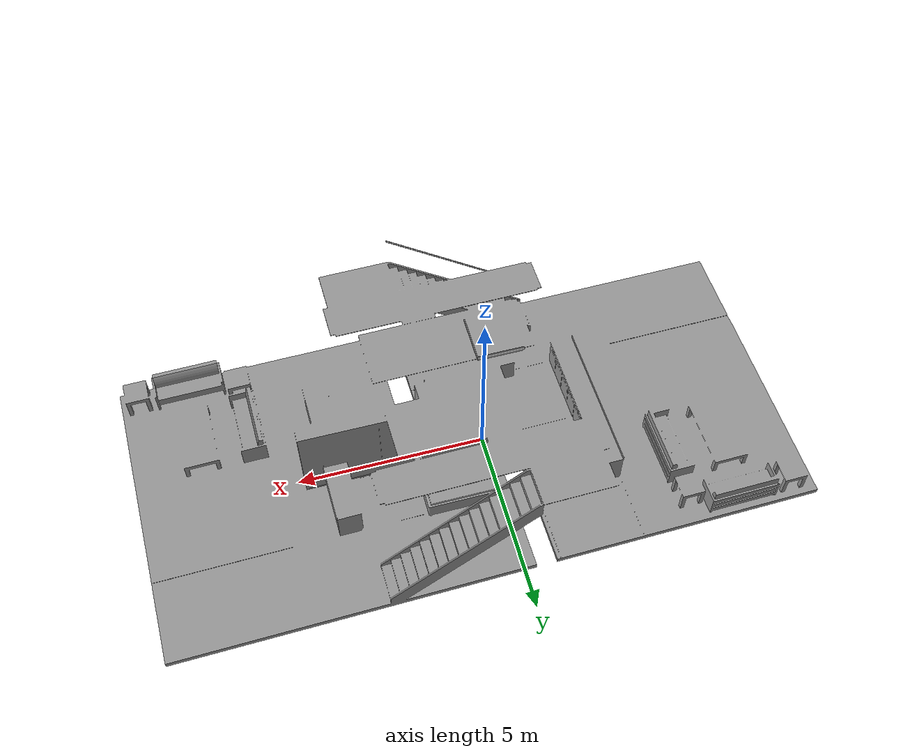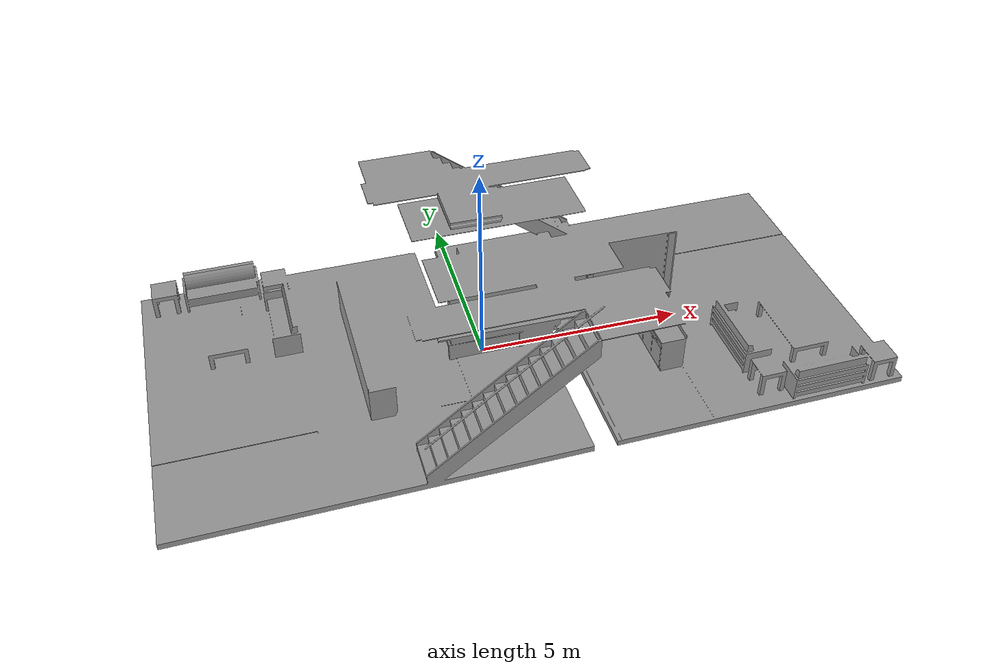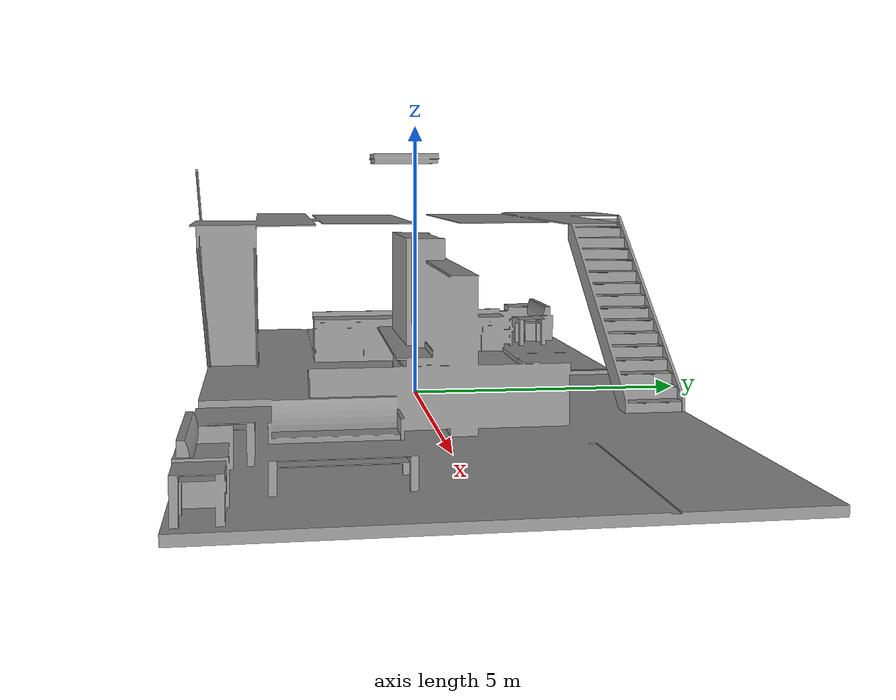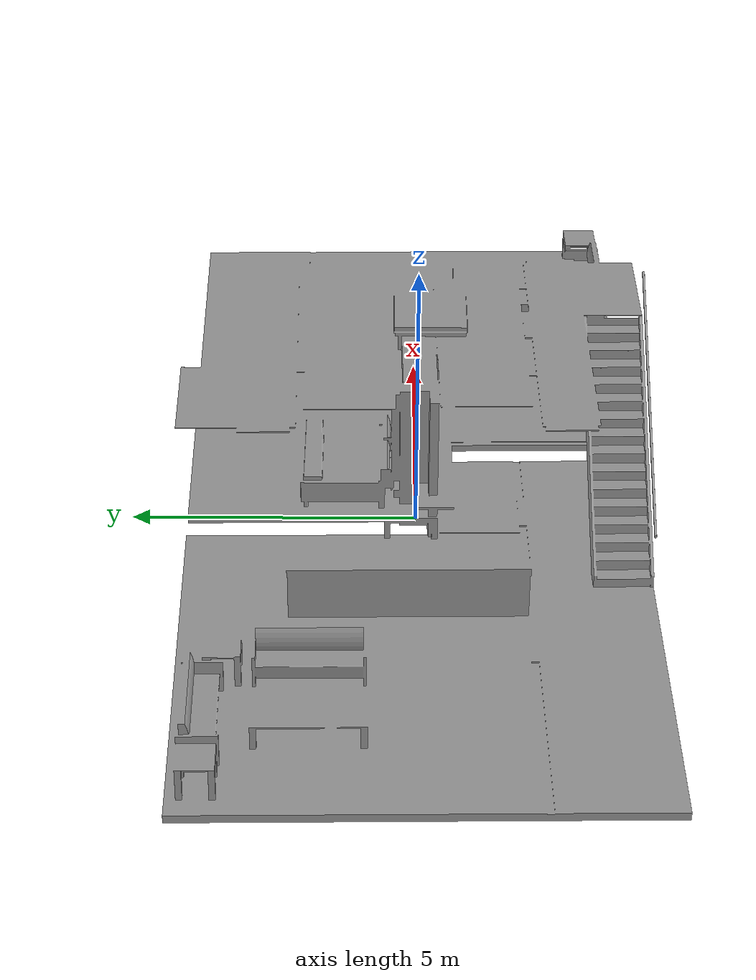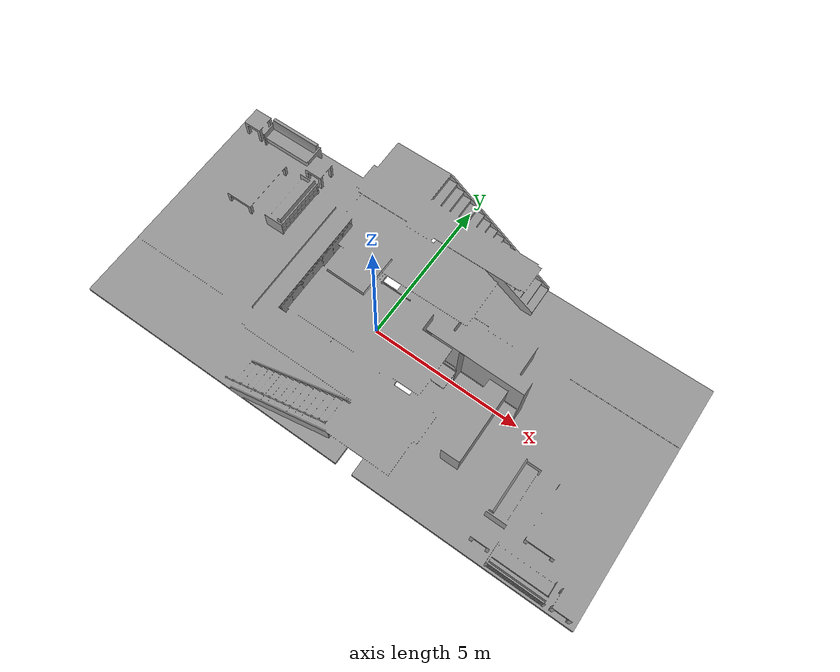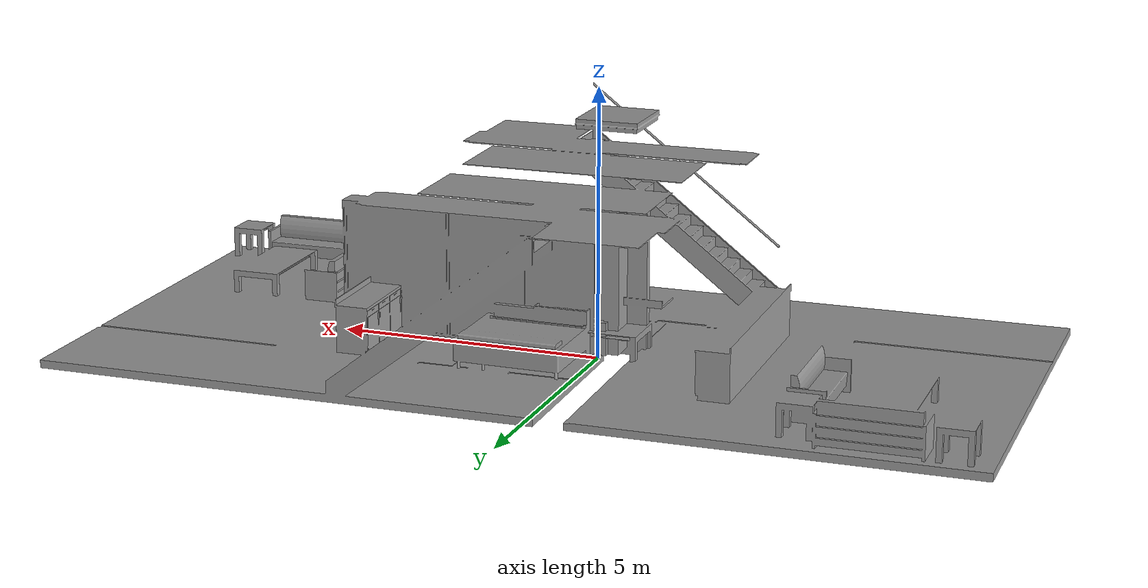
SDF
<?xml version='1.0'?>
<sdf version='1.6'>
  <model name='rmuc_2027'>
    <static>true</static>
    <link name='body'>
      <inertial>
        <mass>2.0</mass>
        <pose frame=''>0 0 0 0 0 0</pose>
        <inertia>
          <ixx>0.570</ixx>
          <ixy>0</ixy>
          <ixz>0</ixz>
          <iyy>0.474</iyy>
          <iyz>0</iyz>
          <izz>0.391</izz>
        </inertia>
      </inertial>

      <pose frame=''>0 0 0.2 0 0 0</pose>
      <self_collide>0</self_collide>
      <kinematic>0</kinematic>
      <gravity>1</gravity>

      <!-- Visual -->
      <visual name='visual'>
        <geometry>
          <mesh>
            <uri>model://rmuc_2027/meshes/rmuc_2027.stl</uri>
            <scale>1 1 1</scale>
          </mesh>
        </geometry>
        <meta>
          <layer>1</layer>
        </meta>
        <material>
          <lighting>1</lighting>
          <script>
            <uri>file://media/materials/scripts/gazebo.material</uri>
            <name>Gazebo/Grey</name>
          </script>
          <shader type='pixel'>
            <normal_map>__default__</normal_map>
          </shader>
          <ambient>0.3 0.3 0.3 1</ambient>
          <diffuse>0.7 0.7 0.7 1</diffuse>
          <specular>0.01 0.01 0.01 1</specular>
          <emissive>0 0 0 1</emissive>
        </material>
      </visual>

      <!-- Collision -->
      <collision name='collision'>
        <laser_retro>0</laser_retro>
        <max_contacts>10</max_contacts>
        <geometry>
          <mesh>
            <uri>model://rmuc_2027/meshes/rmuc_2027.stl</uri>
            <scale>0.1 0.1 0.1</scale>
          </mesh>
        </geometry>
        <surface>
          <friction>
            <ode>
              <mu>0.1</mu>
              <mu2>0.1</mu2>
              <fdir1>0 0 0</fdir1>
              <slip1>0</slip1>
              <slip2>0</slip2>
            </ode>
            <torsional>
              <coefficient>1</coefficient>
              <patch_radius>0</patch_radius>
              <surface_radius>0</surface_radius>
              <use_patch_radius>1</use_patch_radius>
              <ode>
                <slip>0</slip>
              </ode>
            </torsional>
          </friction>
        </surface>
      </collision>
    </link>
  </model>
</sdf>
